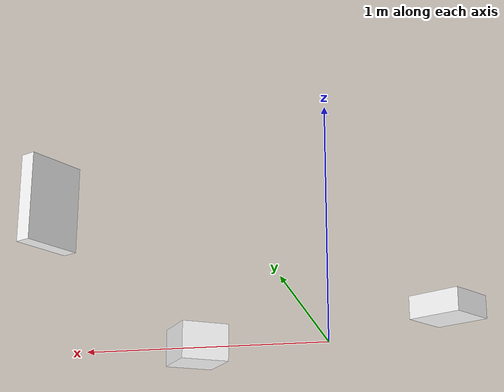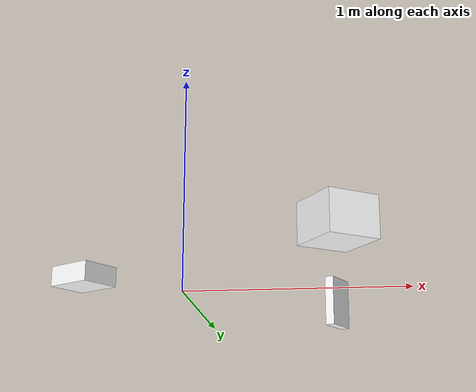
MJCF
<mujoco>
  <compiler angle="radian" />

  <visual>
    <headlight ambient="0.1 0.1 0.1"/>
  </visual>

  <asset>
    <material name="white" rgba="1 1 1 1"/>
    <material name="goal" rgba="0 0 0 0.3"/>
  </asset>

  <option gravity="0 0 -9.8" />
  <worldbody>
    <body name="obj1" pos="0.65363407 1.29098271 0.185" quat="0.84497859 0 0 0.53480013">
      <joint type="free" />
      <inertial pos="0 0 0" mass="1" diaginertia="0.01 0.01 0.01"/>
      <geom type="box" size="0.095 0.025 0.135" material="white"/>
      <!--geom type="box" size="0.1 0.2 0.3" rgba="0.9 0 0 1"/-->
    </body>

    <body name="obj2" pos="0.69461814 -0.58824875 0.135" quat="0.88349256 0 0 -0.46844519">
      <joint type="free" />
      <inertial pos="0 0 0" mass="1" diaginertia="0.01 0.01 0.01"/>
      <geom type="box" size="0.115 0.11 0.085" material="white"/>
      <!--geom type="box" size="0.1 0.2 0.3" rgba="0.9 0 0 1"/-->
    </body>

    <body name="obj3" pos="-0.46952242 0.08354221 0.095" quat="0.48991374 0 0 -0.87177091">
      <joint type="free" />
      <inertial pos="0 0 0" mass="1" diaginertia="0.01 0.01 0.01"/>
      <geom type="box" size="0.095 0.11 0.045" material="white"/>
      <!--geom type="box" size="0.1 0.2 0.3" rgba="0.9 0 0 1"/-->
    </body>

  </worldbody>
</mujoco>
